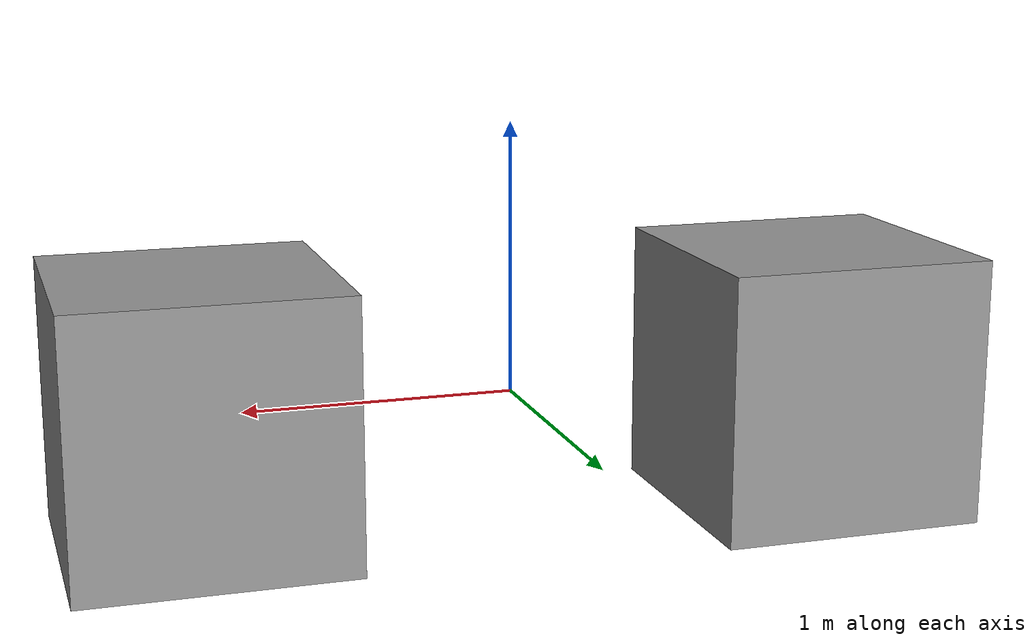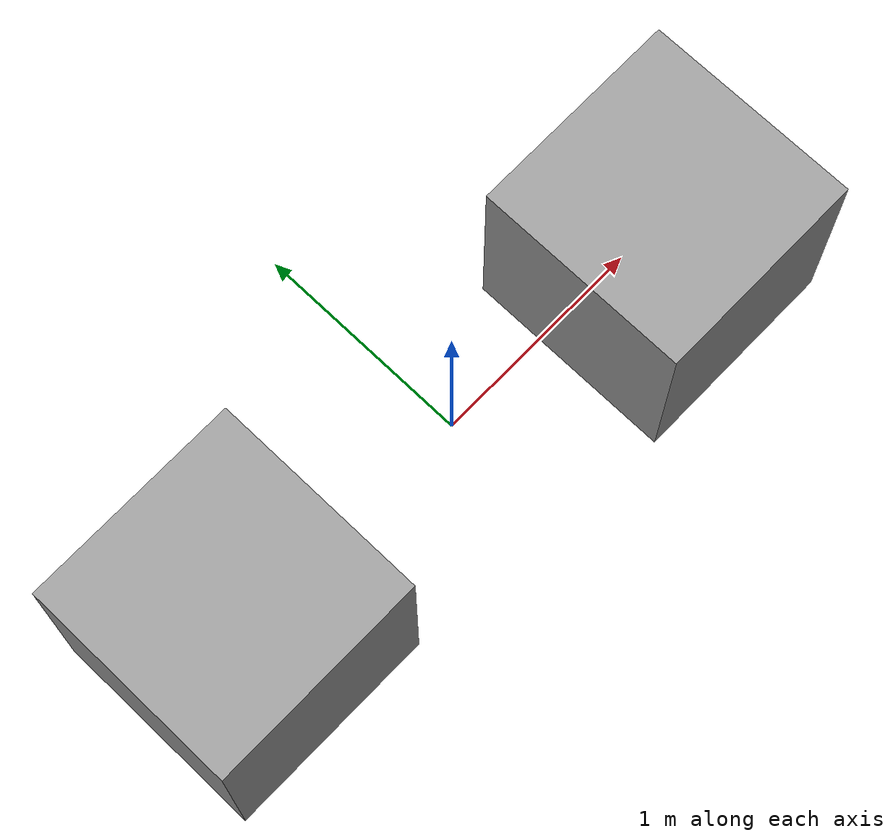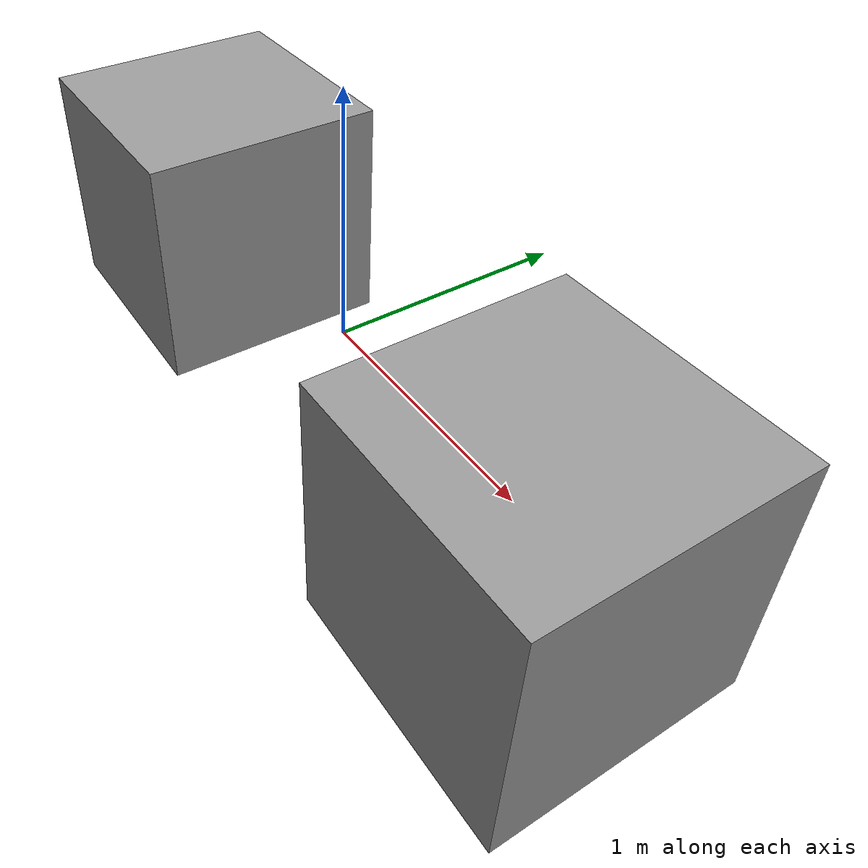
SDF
<?xml version='1.0'?>
<sdf version='1.6'>
  <model name='two_boxes_with_ball_joint'>
    <link name='link_0'>
      <pose frame=''>-1.15591 0.056647 0 0 -0 0</pose>
      <inertial>
        <mass>1</mass>
        <inertia>
          <ixx>0.166667</ixx>
          <ixy>0</ixy>
          <ixz>0</ixz>
          <iyy>0.166667</iyy>
          <iyz>0</iyz>
          <izz>0.166667</izz>
        </inertia>
      </inertial>
      <self_collide>0</self_collide>
      <kinematic>0</kinematic>
      <visual name='visual'>
        <pose frame=''>0 0 0 0 -0 0</pose>
        <geometry>
          <box>
            <size>1 1 1</size>
          </box>
        </geometry>
        <material>
          <lighting>1</lighting>
          <script>
            <uri>file://media/materials/scripts/gazebo.material</uri>
            <name>Gazebo/Grey</name>
          </script>
          <shader type='pixel'/>
          <ambient>0.3 0.3 0.3 1</ambient>
          <diffuse>0.7 0.7 0.7 1</diffuse>
          <specular>0.01 0.01 0.01 1</specular>
          <emissive>0 0 0 1</emissive>
        </material>
        <transparency>0</transparency>
        <cast_shadows>1</cast_shadows>
      </visual>
      <collision name='collision'>
        <laser_retro>0</laser_retro>
        <max_contacts>10</max_contacts>
        <pose frame=''>0 0 0 0 -0 0</pose>
        <geometry>
          <box>
            <size>1 1 1</size>
          </box>
        </geometry>
        <surface>
          <friction>
            <ode>
              <mu>1</mu>
              <mu2>1</mu2>
              <fdir1>0 0 0</fdir1>
              <slip1>0</slip1>
              <slip2>0</slip2>
            </ode>
            <torsional>
              <coefficient>1</coefficient>
              <patch_radius>0</patch_radius>
              <surface_radius>0</surface_radius>
              <use_patch_radius>1</use_patch_radius>
              <ode>
                <slip>0</slip>
              </ode>
            </torsional>
          </friction>
          <bounce>
            <restitution_coefficient>0</restitution_coefficient>
            <threshold>1e+06</threshold>
          </bounce>
          <contact>
            <collide_without_contact>0</collide_without_contact>
            <collide_without_contact_bitmask>1</collide_without_contact_bitmask>
            <collide_bitmask>1</collide_bitmask>
            <ode>
              <soft_cfm>0</soft_cfm>
              <soft_erp>0.2</soft_erp>
              <kp>1e+13</kp>
              <kd>1</kd>
              <max_vel>0.01</max_vel>
              <min_depth>0</min_depth>
            </ode>
            <bullet>
              <split_impulse>1</split_impulse>
              <split_impulse_penetration_threshold>-0.01</split_impulse_penetration_threshold>
              <soft_cfm>0</soft_cfm>
              <soft_erp>0.2</soft_erp>
              <kp>1e+13</kp>
              <kd>1</kd>
            </bullet>
          </contact>
        </surface>
      </collision>
    </link>
    <link name='link_1'>
      <pose frame=''>1.1559 -0.056646 -0 0 -0 0</pose>
      <inertial>
        <mass>1</mass>
        <inertia>
          <ixx>0.166667</ixx>
          <ixy>0</ixy>
          <ixz>0</ixz>
          <iyy>0.166667</iyy>
          <iyz>0</iyz>
          <izz>0.166667</izz>
        </inertia>
      </inertial>
      <self_collide>0</self_collide>
      <kinematic>0</kinematic>
      <visual name='visual'>
        <pose frame=''>0 0 0 0 -0 0</pose>
        <geometry>
          <box>
            <size>1 1 1</size>
          </box>
        </geometry>
        <material>
          <lighting>1</lighting>
          <script>
            <uri>file://media/materials/scripts/gazebo.material</uri>
            <name>Gazebo/Grey</name>
          </script>
          <shader type='pixel'/>
          <ambient>0.3 0.3 0.3 1</ambient>
          <diffuse>0.7 0.7 0.7 1</diffuse>
          <specular>0.01 0.01 0.01 1</specular>
          <emissive>0 0 0 1</emissive>
        </material>
        <transparency>0</transparency>
        <cast_shadows>1</cast_shadows>
      </visual>
      <collision name='collision'>
        <laser_retro>0</laser_retro>
        <max_contacts>10</max_contacts>
        <pose frame=''>0 0 0 0 -0 0</pose>
        <geometry>
          <box>
            <size>1 1 1</size>
          </box>
        </geometry>
        <surface>
          <friction>
            <ode>
              <mu>1</mu>
              <mu2>1</mu2>
              <fdir1>0 0 0</fdir1>
              <slip1>0</slip1>
              <slip2>0</slip2>
            </ode>
            <torsional>
              <coefficient>1</coefficient>
              <patch_radius>0</patch_radius>
              <surface_radius>0</surface_radius>
              <use_patch_radius>1</use_patch_radius>
              <ode>
                <slip>0</slip>
              </ode>
            </torsional>
          </friction>
          <bounce>
            <restitution_coefficient>0</restitution_coefficient>
            <threshold>1e+06</threshold>
          </bounce>
          <contact>
            <collide_without_contact>0</collide_without_contact>
            <collide_without_contact_bitmask>1</collide_without_contact_bitmask>
            <collide_bitmask>1</collide_bitmask>
            <ode>
              <soft_cfm>0</soft_cfm>
              <soft_erp>0.2</soft_erp>
              <kp>1e+13</kp>
              <kd>1</kd>
              <max_vel>0.01</max_vel>
              <min_depth>0</min_depth>
            </ode>
            <bullet>
              <split_impulse>1</split_impulse>
              <split_impulse_penetration_threshold>-0.01</split_impulse_penetration_threshold>
              <soft_cfm>0</soft_cfm>
              <soft_erp>0.2</soft_erp>
              <kp>1e+13</kp>
              <kd>1</kd>
            </bullet>
          </contact>
        </surface>
      </collision>
    </link>
    <joint name='link_0_JOINT_0' type='ball'>
      <parent>link_0</parent>
      <child>link_1</child>
      <pose frame=''>-0.9 0 0 0 -0 0</pose>
      <physics>
        <ode>
          <limit>
            <cfm>0</cfm>
            <erp>0.2</erp>
          </limit>
          <suspension>
            <cfm>0</cfm>
            <erp>0.2</erp>
          </suspension>
        </ode>
      </physics>
    </joint>
    <static>0</static>
    <allow_auto_disable>1</allow_auto_disable>
  </model>
</sdf>
